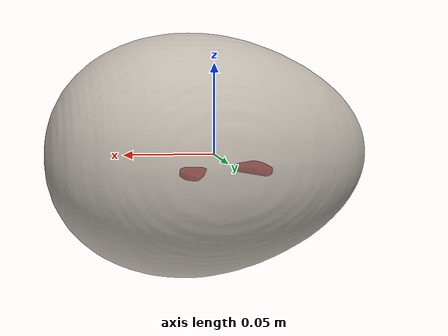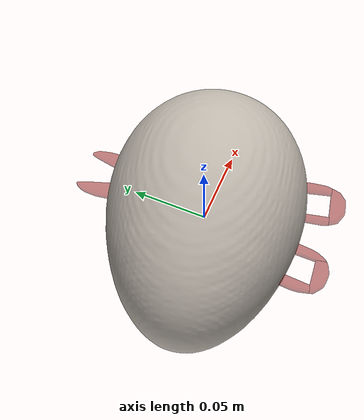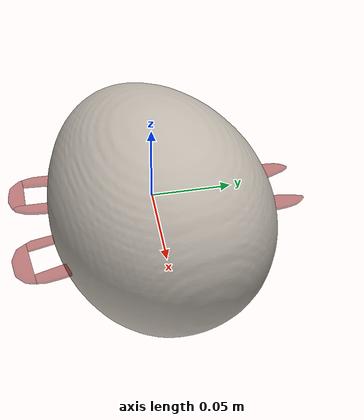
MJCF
<mujoco model="scissors_21">
  <asset>
    <mesh file="visual/model_normalized_0.obj" name="model_normalized_0_vis" scale="0.18 0.18 0.18" refquat="0.06930858459954578 -0.7037018687631917 -0.06930858459954578 0.7037018687631917"/>
    <texture type="2d" name="image0" file="visual/image0.png"/>
    <material name="Material.234" texture="image0" specular="0.7" shininess="0.65"/>
    <mesh file="collision/collision_mesh_collision_0.obj" name="scissors_collision_mesh_0" scale="0.18 0.18 0.18" refquat="0.06930858459954578 -0.7037018687631917 -0.06930858459954578 0.7037018687631917"/>
    <mesh file="collision/collision_mesh_collision_1.obj" name="scissors_collision_mesh_1" scale="0.18 0.18 0.18" refquat="0.06930858459954578 -0.7037018687631917 -0.06930858459954578 0.7037018687631917"/>
    <mesh file="collision/collision_mesh_collision_2.obj" name="scissors_collision_mesh_2" scale="0.18 0.18 0.18" refquat="0.06930858459954578 -0.7037018687631917 -0.06930858459954578 0.7037018687631917"/>
    <mesh file="collision/collision_mesh_collision_3.obj" name="scissors_collision_mesh_3" scale="0.18 0.18 0.18" refquat="0.06930858459954578 -0.7037018687631917 -0.06930858459954578 0.7037018687631917"/>
    <mesh file="collision/collision_mesh_collision_4.obj" name="scissors_collision_mesh_4" scale="0.18 0.18 0.18" refquat="0.06930858459954578 -0.7037018687631917 -0.06930858459954578 0.7037018687631917"/>
    <mesh file="collision/collision_mesh_collision_5.obj" name="scissors_collision_mesh_5" scale="0.18 0.18 0.18" refquat="0.06930858459954578 -0.7037018687631917 -0.06930858459954578 0.7037018687631917"/>
    <mesh file="collision/collision_mesh_collision_6.obj" name="scissors_collision_mesh_6" scale="0.18 0.18 0.18" refquat="0.06930858459954578 -0.7037018687631917 -0.06930858459954578 0.7037018687631917"/>
    <mesh file="collision/collision_mesh_collision_7.obj" name="scissors_collision_mesh_7" scale="0.18 0.18 0.18" refquat="0.06930858459954578 -0.7037018687631917 -0.06930858459954578 0.7037018687631917"/>
    <mesh file="collision/collision_mesh_collision_8.obj" name="scissors_collision_mesh_8" scale="0.18 0.18 0.18" refquat="0.06930858459954578 -0.7037018687631917 -0.06930858459954578 0.7037018687631917"/>
    <mesh file="collision/collision_mesh_collision_9.obj" name="scissors_collision_mesh_9" scale="0.18 0.18 0.18" refquat="0.06930858459954578 -0.7037018687631917 -0.06930858459954578 0.7037018687631917"/>
    <mesh file="collision/collision_mesh_collision_10.obj" name="scissors_collision_mesh_10" scale="0.18 0.18 0.18" refquat="0.06930858459954578 -0.7037018687631917 -0.06930858459954578 0.7037018687631917"/>
    <mesh file="collision/collision_mesh_collision_11.obj" name="scissors_collision_mesh_11" scale="0.18 0.18 0.18" refquat="0.06930858459954578 -0.7037018687631917 -0.06930858459954578 0.7037018687631917"/>
    <mesh file="collision/collision_mesh_collision_12.obj" name="scissors_collision_mesh_12" scale="0.18 0.18 0.18" refquat="0.06930858459954578 -0.7037018687631917 -0.06930858459954578 0.7037018687631917"/>
    <mesh file="collision/collision_mesh_collision_13.obj" name="scissors_collision_mesh_13" scale="0.18 0.18 0.18" refquat="0.06930858459954578 -0.7037018687631917 -0.06930858459954578 0.7037018687631917"/>
  </asset>
  <custom><text name="material_gt" data="metal_plastic"/></custom>
  <default>
    <default class="region">
      <geom group="1" conaffinity="0" contype="0" rgba="0 1 0 0"/>
    </default>
    <default class="collision">
      <geom group="0" rgba="0.5 0 0 0.5" density="1000.0"/>
    </default>
  </default>
  <worldbody>
    <body>
      <body name="object">
        <geom solimp="0.998 0.998 0.001" solref="0.001 1" density="100" friction="0.95 0.3 0.1" type="mesh" mesh="model_normalized_0_vis" conaffinity="0" contype="0" group="1" material="Material.234"/>
        <geom class="region" name="reg_bbox" type="box" pos="0.01360008959172547 0.0022012562374793803 -1.362906311995482e-08" size="0.04054574614327505 0.0896172837560022 0.0058774419"/>
        <geom mesh="scissors_collision_mesh_0" type="mesh" class="collision"/>
        <geom mesh="scissors_collision_mesh_1" type="mesh" class="collision"/>
        <geom mesh="scissors_collision_mesh_2" type="mesh" class="collision"/>
        <geom mesh="scissors_collision_mesh_3" type="mesh" class="collision"/>
        <geom mesh="scissors_collision_mesh_4" type="mesh" class="collision"/>
        <geom mesh="scissors_collision_mesh_5" type="mesh" class="collision"/>
        <geom mesh="scissors_collision_mesh_6" type="mesh" class="collision"/>
        <geom mesh="scissors_collision_mesh_7" type="mesh" class="collision"/>
        <geom mesh="scissors_collision_mesh_8" type="mesh" class="collision"/>
        <geom mesh="scissors_collision_mesh_9" type="mesh" class="collision"/>
        <geom mesh="scissors_collision_mesh_10" type="mesh" class="collision"/>
        <geom mesh="scissors_collision_mesh_11" type="mesh" class="collision"/>
        <geom mesh="scissors_collision_mesh_12" type="mesh" class="collision"/>
        <geom mesh="scissors_collision_mesh_13" type="mesh" class="collision"/>
      </body>
    </body>
  </worldbody>
</mujoco>
